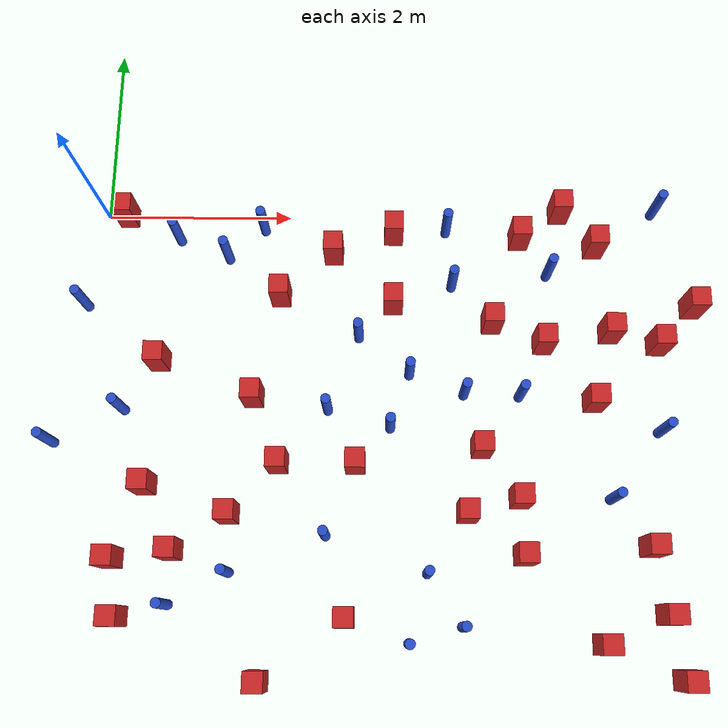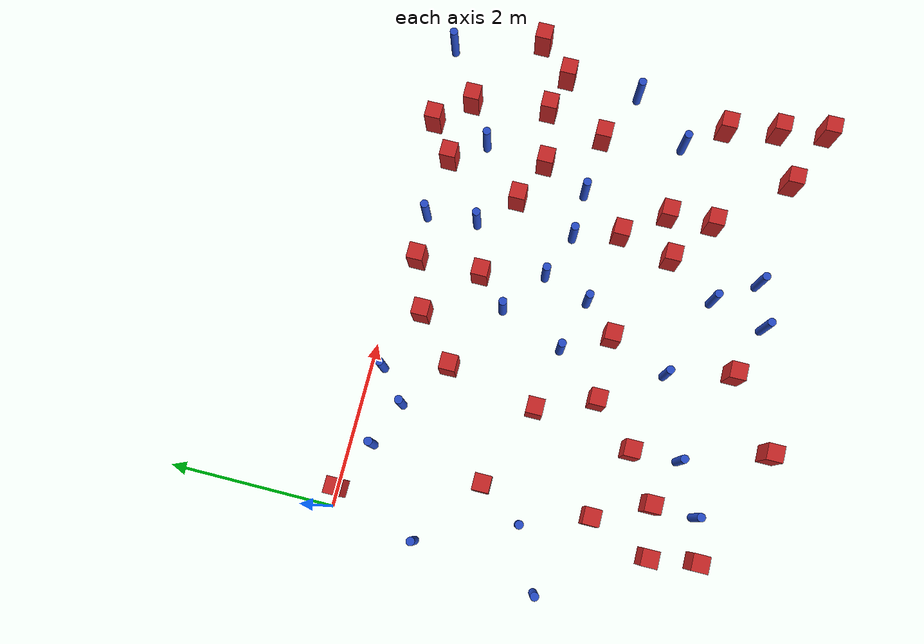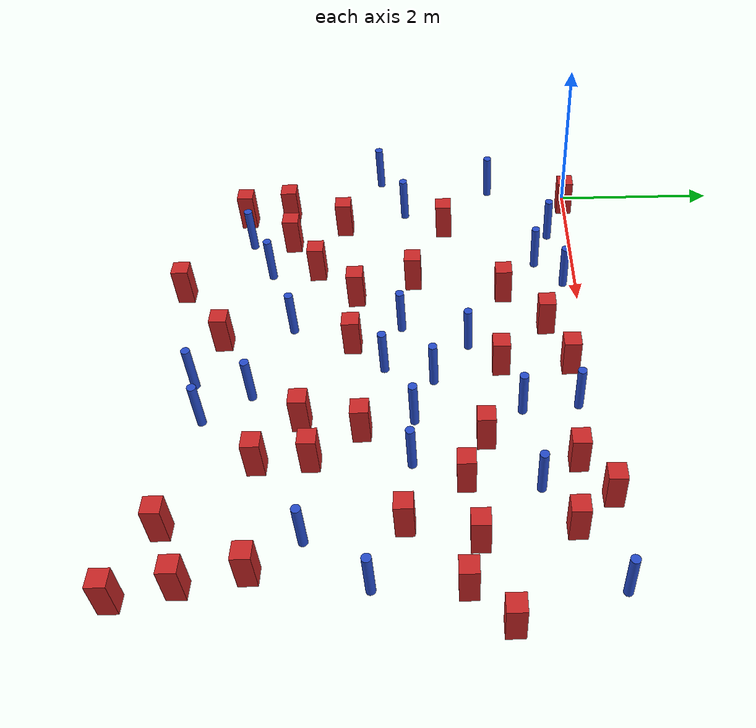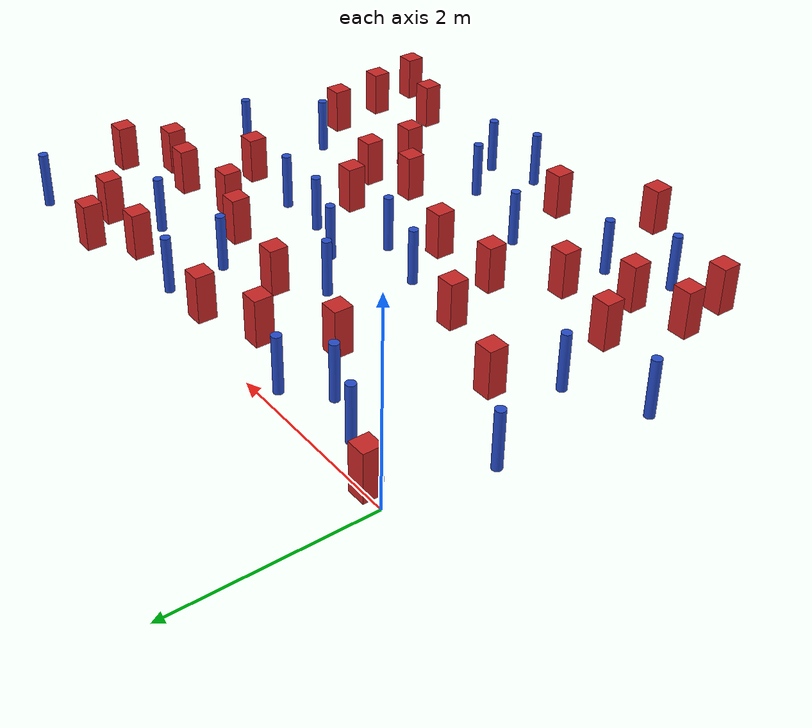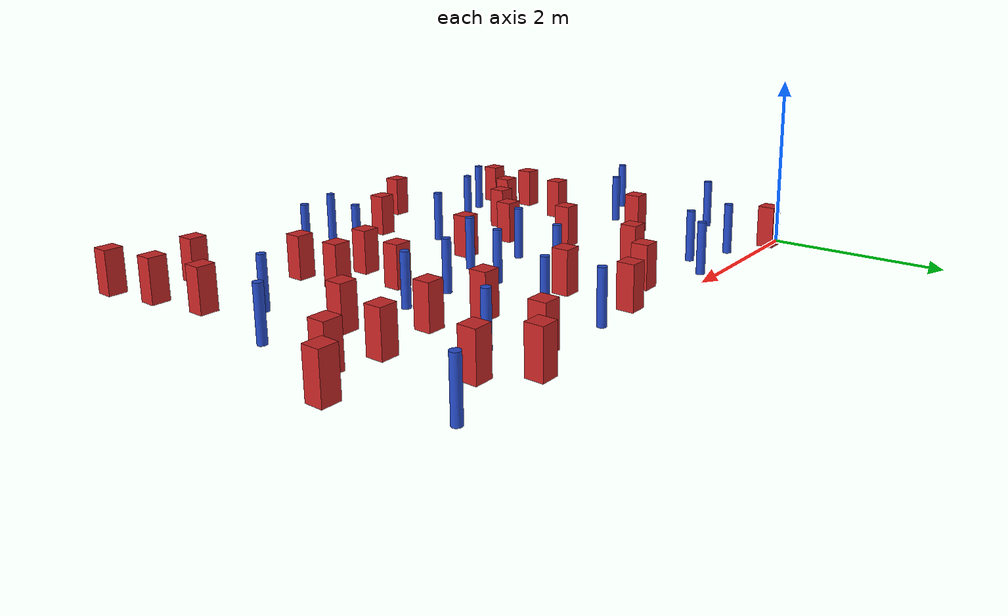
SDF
<sdf version="1.6">
 <model name="dense_26">
  <model name="pole_obstacle2">
   <static>true</static>
   <pose>5.98450393282 0.0520118325981 2.88873142074e-08 -9.90536689361e-09 4.60219949001e-07 -1.20965994955e-07</pose>
   <link name="link">
    <pose>0 0 0.3 0 -0 0</pose>
    <inertial>
     <mass>1</mass>
     <inertia><ixx>0.145833</ixx><ixy>0</ixy><ixz>0</ixz><iyy>0.145833</iyy><iyz>0</iyz><izz>0.125</izz></inertia>
    </inertial>
    <collision name="collision">
     <geometry><cylinder><radius>0.05</radius><length>.6</length></cylinder></geometry>
    </collision>
    <visual name="visual">
     <geometry><cylinder><radius>0.05</radius><length>.6</length></cylinder></geometry>
     <material>
      <script><name>Gazebo/Blue</name><uri>file://media/materials/scripts/gazebo.material</uri></script>
     </material>
    </visual>
   </link>
  </model>
  <model name="square_post_obstacle13">
   <static>true</static>
   <pose>5.93335077788 -1.4574501915 8.22691968438e-08 7.2212513382e-06 -7.54495500217e-07 2.29674213826e-05</pose>
   <link name="link">
    <pose>0 0 0.25 0 -0 0</pose>
    <inertial>
     <mass>100</mass>
     <inertia>
      <ixx>0.166667</ixx>
      <ixy>0</ixy>
      <ixz>0</ixz>
      <iyy>0.166667</iyy>
      <iyz>0</iyz>
      <izz>0.166667</izz>
     </inertia>
    </inertial>
    <collision name="collision"><geometry><box><size>.2 .2 .5</size></box></geometry></collision>
    <visual name="visual">
     <geometry><box><size>.2 .2 .5</size></box></geometry>
     <material>
      <script><name>Gazebo/Red</name><uri>file://media/materials/scripts/gazebo.material</uri></script>
     </material>
    </visual>
   </link>
  </model>
  <model name="square_post_obstacle28">
   <static>true</static>
   <pose>4.45111842854 -3.65477685041 8.22691968438e-08 7.2212513382e-06 -7.54495500217e-07 2.29674213826e-05</pose>
   <link name="link">
    <pose>0 0 0.25 0 -0 0</pose>
    <inertial>
     <mass>100</mass>
     <inertia>
      <ixx>0.166667</ixx>
      <ixy>0</ixy>
      <ixz>0</ixz>
      <iyy>0.166667</iyy>
      <iyz>0</iyz>
      <izz>0.166667</izz>
     </inertia>
    </inertial>
    <collision name="collision"><geometry><box><size>.2 .2 .5</size></box></geometry></collision>
    <visual name="visual">
     <geometry><box><size>.2 .2 .5</size></box></geometry>
     <material>
      <script><name>Gazebo/Red</name><uri>file://media/materials/scripts/gazebo.material</uri></script>
     </material>
    </visual>
   </link>
  </model>
  <model name="square_post_obstacle36">
   <static>true</static>
   <pose>6.32272839753 -1.04574170397 8.22691968438e-08 7.2212513382e-06 -7.54495500217e-07 2.29674213826e-05</pose>
   <link name="link">
    <pose>0 0 0.25 0 -0 0</pose>
    <inertial>
     <mass>100</mass>
     <inertia>
      <ixx>0.166667</ixx>
      <ixy>0</ixy>
      <ixz>0</ixz>
      <iyy>0.166667</iyy>
      <iyz>0</iyz>
      <izz>0.166667</izz>
     </inertia>
    </inertial>
    <collision name="collision"><geometry><box><size>.2 .2 .5</size></box></geometry></collision>
    <visual name="visual">
     <geometry><box><size>.2 .2 .5</size></box></geometry>
     <material>
      <script><name>Gazebo/Red</name><uri>file://media/materials/scripts/gazebo.material</uri></script>
     </material>
    </visual>
   </link>
  </model>
  <model name="pole_obstacle37">
   <static>true</static>
   <pose>1.49256825739 -3.83548454212 2.88873142074e-08 -9.90536689791e-09 4.6021994899e-07 -1.20965994959e-07</pose>
   <link name="link">
    <pose>0 0 0.3 0 -0 0</pose>
    <inertial>
     <mass>1</mass>
     <inertia><ixx>0.145833</ixx><ixy>0</ixy><ixz>0</ixz><iyy>0.145833</iyy><iyz>0</iyz><izz>0.125</izz></inertia>
    </inertial>
    <collision name="collision">
     <geometry><cylinder><radius>0.05</radius><length>.6</length></cylinder></geometry>
    </collision>
    <visual name="visual">
     <geometry><cylinder><radius>0.05</radius><length>.6</length></cylinder></geometry>
     <material>
      <script><name>Gazebo/Blue</name><uri>file://media/materials/scripts/gazebo.material</uri></script>
     </material>
    </visual>
   </link>
  </model>
  <model name="square_post_obstacle39">
   <static>true</static>
   <pose>5.97103102984 -4.82717464047 8.22691968438e-08 7.2212513382e-06 -7.54495500217e-07 2.29674213826e-05</pose>
   <link name="link">
    <pose>0 0 0.25 0 -0 0</pose>
    <inertial>
     <mass>100</mass>
     <inertia>
      <ixx>0.166667</ixx>
      <ixy>0</ixy>
      <ixz>0</ixz>
      <iyy>0.166667</iyy>
      <iyz>0</iyz>
      <izz>0.166667</izz>
     </inertia>
    </inertial>
    <collision name="collision"><geometry><box><size>.2 .2 .5</size></box></geometry></collision>
    <visual name="visual">
     <geometry><box><size>.2 .2 .5</size></box></geometry>
     <material>
      <script><name>Gazebo/Red</name><uri>file://media/materials/scripts/gazebo.material</uri></script>
     </material>
    </visual>
   </link>
  </model>
  <model name="pole_obstacle40">
   <static>true</static>
   <pose>3.48325071317 -3.83719555278 2.88873142074e-08 -9.90536690232e-09 4.6021994898e-07 -1.20965994968e-07</pose>
   <link name="link">
    <pose>0 0 0.3 0 -0 0</pose>
    <inertial>
     <mass>1</mass>
     <inertia><ixx>0.145833</ixx><ixy>0</ixy><ixz>0</ixz><iyy>0.145833</iyy><iyz>0</iyz><izz>0.125</izz></inertia>
    </inertial>
    <collision name="collision">
     <geometry><cylinder><radius>0.05</radius><length>.6</length></cylinder></geometry>
    </collision>
    <visual name="visual">
     <geometry><cylinder><radius>0.05</radius><length>.6</length></cylinder></geometry>
     <material>
      <script><name>Gazebo/Blue</name><uri>file://media/materials/scripts/gazebo.material</uri></script>
     </material>
    </visual>
   </link>
  </model>
  <model name="square_post_obstacle41">
   <static>true</static>
   <pose>2.66151567636 -4.26531768312 8.22691968438e-08 7.2212513382e-06 -7.54495500217e-07 2.29674213826e-05</pose>
   <link name="link">
    <pose>0 0 0.25 0 -0 0</pose>
    <inertial>
     <mass>100</mass>
     <inertia>
      <ixx>0.166667</ixx>
      <ixy>0</ixy>
      <ixz>0</ixz>
      <iyy>0.166667</iyy>
      <iyz>0</iyz>
      <izz>0.166667</izz>
     </inertia>
    </inertial>
    <collision name="collision"><geometry><box><size>.2 .2 .5</size></box></geometry></collision>
    <visual name="visual">
     <geometry><box><size>.2 .2 .5</size></box></geometry>
     <material>
      <script><name>Gazebo/Red</name><uri>file://media/materials/scripts/gazebo.material</uri></script>
     </material>
    </visual>
   </link>
  </model>
  <model name="pole_obstacle44">
   <static>true</static>
   <pose>-0.382834621249 -2.52959124506 2.88873142074e-08 -9.90536689663e-09 4.60219948993e-07 -1.20965994959e-07</pose>
   <link name="link">
    <pose>0 0 0.3 0 -0 0</pose>
    <inertial>
     <mass>1</mass>
     <inertia><ixx>0.145833</ixx><ixy>0</ixy><ixz>0</ixz><iyy>0.145833</iyy><iyz>0</iyz><izz>0.125</izz></inertia>
    </inertial>
    <collision name="collision">
     <geometry><cylinder><radius>0.05</radius><length>.6</length></cylinder></geometry>
    </collision>
    <visual name="visual">
     <geometry><cylinder><radius>0.05</radius><length>.6</length></cylinder></geometry>
     <material>
      <script><name>Gazebo/Blue</name><uri>file://media/materials/scripts/gazebo.material</uri></script>
     </material>
    </visual>
   </link>
  </model>
  <model name="square_post_obstacle53">
   <static>true</static>
   <pose>0.409191091233 -4.26448317062 8.22691968438e-08 7.2212513382e-06 -7.54495500217e-07 2.29674213826e-05</pose>
   <link name="link">
    <pose>0 0 0.25 0 -0 0</pose>
    <inertial>
     <mass>100</mass>
     <inertia>
      <ixx>0.166667</ixx>
      <ixy>0</ixy>
      <ixz>0</ixz>
      <iyy>0.166667</iyy>
      <iyz>0</iyz>
      <izz>0.166667</izz>
     </inertia>
    </inertial>
    <collision name="collision"><geometry><box><size>.2 .2 .5</size></box></geometry></collision>
    <visual name="visual">
     <geometry><box><size>.2 .2 .5</size></box></geometry>
     <material>
      <script><name>Gazebo/Red</name><uri>file://media/materials/scripts/gazebo.material</uri></script>
     </material>
    </visual>
   </link>
  </model>
  <model name="pole_obstacle51">
   <static>true</static>
   <pose>2.77264716484 -1.38363650545 2.88873142074e-08 -9.90536689395e-09 4.60219949e-07 -1.20965994953e-07</pose>
   <link name="link">
    <pose>0 0 0.3 0 -0 0</pose>
    <inertial>
     <mass>1</mass>
     <inertia><ixx>0.145833</ixx><ixy>0</ixy><ixz>0</ixz><iyy>0.145833</iyy><iyz>0</iyz><izz>0.125</izz></inertia>
    </inertial>
    <collision name="collision">
     <geometry><cylinder><radius>0.05</radius><length>.6</length></cylinder></geometry>
    </collision>
    <visual name="visual">
     <geometry><cylinder><radius>0.05</radius><length>.6</length></cylinder></geometry>
     <material>
      <script><name>Gazebo/Blue</name><uri>file://media/materials/scripts/gazebo.material</uri></script>
     </material>
    </visual>
   </link>
  </model>
  <model name="square_post_obstacle54">
   <static>true</static>
   <pose>1.96035430319 -2.73951562965 8.22691968438e-08 7.2212513382e-06 -7.54495500217e-07 2.29674213826e-05</pose>
   <link name="link">
    <pose>0 0 0.25 0 -0 0</pose>
    <inertial>
     <mass>100</mass>
     <inertia>
      <ixx>0.166667</ixx>
      <ixy>0</ixy>
      <ixz>0</ixz>
      <iyy>0.166667</iyy>
      <iyz>0</iyz>
      <izz>0.166667</izz>
     </inertia>
    </inertial>
    <collision name="collision"><geometry><box><size>.2 .2 .5</size></box></geometry></collision>
    <visual name="visual">
     <geometry><box><size>.2 .2 .5</size></box></geometry>
     <material>
      <script><name>Gazebo/Red</name><uri>file://media/materials/scripts/gazebo.material</uri></script>
     </material>
    </visual>
   </link>
  </model>
  <model name="pole_obstacle53">
   <static>true</static>
   <pose>3.29543677055 -4.50667835025 2.88873142074e-08 -9.90536689859e-09 4.60219948989e-07 -1.20965994961e-07</pose>
   <link name="link">
    <pose>0 0 0.3 0 -0 0</pose>
    <inertial>
     <mass>1</mass>
     <inertia><ixx>0.145833</ixx><ixy>0</ixy><ixz>0</ixz><iyy>0.145833</iyy><iyz>0</iyz><izz>0.125</izz></inertia>
    </inertial>
    <collision name="collision">
     <geometry><cylinder><radius>0.05</radius><length>.6</length></cylinder></geometry>
    </collision>
    <visual name="visual">
     <geometry><cylinder><radius>0.05</radius><length>.6</length></cylinder></geometry>
     <material>
      <script><name>Gazebo/Blue</name><uri>file://media/materials/scripts/gazebo.material</uri></script>
     </material>
    </visual>
   </link>
  </model>
  <model name="pole_obstacle54">
   <static>true</static>
   <pose>-0.143651358679 -1.04410342524 2.88873142074e-08 -9.90536690103e-09 4.60219948983e-07 -1.20965994964e-07</pose>
   <link name="link">
    <pose>0 0 0.3 0 -0 0</pose>
    <inertial>
     <mass>1</mass>
     <inertia><ixx>0.145833</ixx><ixy>0</ixy><ixz>0</ixz><iyy>0.145833</iyy><iyz>0</iyz><izz>0.125</izz></inertia>
    </inertial>
    <collision name="collision">
     <geometry><cylinder><radius>0.05</radius><length>.6</length></cylinder></geometry>
    </collision>
    <visual name="visual">
     <geometry><cylinder><radius>0.05</radius><length>.6</length></cylinder></geometry>
     <material>
      <script><name>Gazebo/Blue</name><uri>file://media/materials/scripts/gazebo.material</uri></script>
     </material>
    </visual>
   </link>
  </model>
  <model name="square_post_obstacle67">
   <static>true</static>
   <pose>0.230496301071 -0.016994619887 8.22691968438e-08 7.2212513382e-06 -7.54495500217e-07 2.29674213826e-05</pose>
   <link name="link">
    <pose>0 0 0.25 0 -0 0</pose>
    <inertial>
     <mass>100</mass>
     <inertia>
      <ixx>0.166667</ixx>
      <ixy>0</ixy>
      <ixz>0</ixz>
      <iyy>0.166667</iyy>
      <iyz>0</iyz>
      <izz>0.166667</izz>
     </inertia>
    </inertial>
    <collision name="collision"><geometry><box><size>.2 .2 .5</size></box></geometry></collision>
    <visual name="visual">
     <geometry><box><size>.2 .2 .5</size></box></geometry>
     <material>
      <script><name>Gazebo/Red</name><uri>file://media/materials/scripts/gazebo.material</uri></script>
     </material>
    </visual>
   </link>
  </model>
  <model name="square_post_obstacle70">
   <static>true</static>
   <pose>4.42544886467 -3.08571415982 8.22691968438e-08 7.2212513382e-06 -7.54495500217e-07 2.29674213826e-05</pose>
   <link name="link">
    <pose>0 0 0.25 0 -0 0</pose>
    <inertial>
     <mass>100</mass>
     <inertia>
      <ixx>0.166667</ixx>
      <ixy>0</ixy>
      <ixz>0</ixz>
      <iyy>0.166667</iyy>
      <iyz>0</iyz>
      <izz>0.166667</izz>
     </inertia>
    </inertial>
    <collision name="collision"><geometry><box><size>.2 .2 .5</size></box></geometry></collision>
    <visual name="visual">
     <geometry><box><size>.2 .2 .5</size></box></geometry>
     <material>
      <script><name>Gazebo/Red</name><uri>file://media/materials/scripts/gazebo.material</uri></script>
     </material>
    </visual>
   </link>
  </model>
  <model name="square_post_obstacle73">
   <static>true</static>
   <pose>1.93574603349 -0.931597426124 8.22691968438e-08 7.2212513382e-06 -7.54495500217e-07 2.29674213826e-05</pose>
   <link name="link">
    <pose>0 0 0.25 0 -0 0</pose>
    <inertial>
     <mass>100</mass>
     <inertia>
      <ixx>0.166667</ixx>
      <ixy>0</ixy>
      <ixz>0</ixz>
      <iyy>0.166667</iyy>
      <iyz>0</iyz>
      <izz>0.166667</izz>
     </inertia>
    </inertial>
    <collision name="collision"><geometry><box><size>.2 .2 .5</size></box></geometry></collision>
    <visual name="visual">
     <geometry><box><size>.2 .2 .5</size></box></geometry>
     <material>
      <script><name>Gazebo/Red</name><uri>file://media/materials/scripts/gazebo.material</uri></script>
     </material>
    </visual>
   </link>
  </model>
  <model name="square_post_obstacle75">
   <static>true</static>
   <pose>5.20653766354 -4.50158408308 8.22691968438e-08 7.22125133819e-06 -7.54495500217e-07 2.29674213826e-05</pose>
   <link name="link">
    <pose>0 0 0.25 0 -0 0</pose>
    <inertial>
     <mass>100</mass>
     <inertia>
      <ixx>0.166667</ixx>
      <ixy>0</ixy>
      <ixz>0</ixz>
      <iyy>0.166667</iyy>
      <iyz>0</iyz>
      <izz>0.166667</izz>
     </inertia>
    </inertial>
    <collision name="collision"><geometry><box><size>.2 .2 .5</size></box></geometry></collision>
    <visual name="visual">
     <geometry><box><size>.2 .2 .5</size></box></geometry>
     <material>
      <script><name>Gazebo/Red</name><uri>file://media/materials/scripts/gazebo.material</uri></script>
     </material>
    </visual>
   </link>
  </model>
  <model name="pole_obstacle81">
   <static>true</static>
   <pose>3.87712751434 -2.00368837345 2.88873142074e-08 -9.9053668955e-09 4.60219948996e-07 -1.20965994957e-07</pose>
   <link name="link">
    <pose>0 0 0.3 0 -0 0</pose>
    <inertial>
     <mass>1</mass>
     <inertia><ixx>0.145833</ixx><ixy>0</ixy><ixz>0</ixz><iyy>0.145833</iyy><iyz>0</iyz><izz>0.125</izz></inertia>
    </inertial>
    <collision name="collision">
     <geometry><cylinder><radius>0.05</radius><length>.6</length></cylinder></geometry>
    </collision>
    <visual name="visual">
     <geometry><cylinder><radius>0.05</radius><length>.6</length></cylinder></geometry>
     <material>
      <script><name>Gazebo/Blue</name><uri>file://media/materials/scripts/gazebo.material</uri></script>
     </material>
    </visual>
   </link>
  </model>
  <model name="pole_obstacle84">
   <static>true</static>
   <pose>3.7648357998 -0.805726937626 2.88873142074e-08 -9.90536689285e-09 4.60219949002e-07 -1.20965994953e-07</pose>
   <link name="link">
    <pose>0 0 0.3 0 -0 0</pose>
    <inertial>
     <mass>1</mass>
     <inertia><ixx>0.145833</ixx><ixy>0</ixy><ixz>0</ixz><iyy>0.145833</iyy><iyz>0</iyz><izz>0.125</izz></inertia>
    </inertial>
    <collision name="collision">
     <geometry><cylinder><radius>0.05</radius><length>.6</length></cylinder></geometry>
    </collision>
    <visual name="visual">
     <geometry><cylinder><radius>0.05</radius><length>.6</length></cylinder></geometry>
     <material>
      <script><name>Gazebo/Blue</name><uri>file://media/materials/scripts/gazebo.material</uri></script>
     </material>
    </visual>
   </link>
  </model>
  <model name="pole_obstacle87">
   <static>true</static>
   <pose>3.30753627075 -1.78974262358 2.88873142074e-08 -9.90536689395e-09 4.60219949e-07 -1.20965994953e-07</pose>
   <link name="link">
    <pose>0 0 0.3 0 -0 0</pose>
    <inertial>
     <mass>1</mass>
     <inertia><ixx>0.145833</ixx><ixy>0</ixy><ixz>0</ixz><iyy>0.145833</iyy><iyz>0</iyz><izz>0.125</izz></inertia>
    </inertial>
    <collision name="collision">
     <geometry><cylinder><radius>0.05</radius><length>.6</length></cylinder></geometry>
    </collision>
    <visual name="visual">
     <geometry><cylinder><radius>0.05</radius><length>.6</length></cylinder></geometry>
     <material>
      <script><name>Gazebo/Blue</name><uri>file://media/materials/scripts/gazebo.material</uri></script>
     </material>
    </visual>
   </link>
  </model>
  <model name="square_post_obstacle81">
   <static>true</static>
   <pose>5.84723898401 -4.21907924971 8.22691968438e-08 7.2212513382e-06 -7.54495500217e-07 2.29674213826e-05</pose>
   <link name="link">
    <pose>0 0 0.25 0 -0 0</pose>
    <inertial>
     <mass>100</mass>
     <inertia>
      <ixx>0.166667</ixx>
      <ixy>0</ixy>
      <ixz>0</ixz>
      <iyy>0.166667</iyy>
      <iyz>0</iyz>
      <izz>0.166667</izz>
     </inertia>
    </inertial>
    <collision name="collision"><geometry><box><size>.2 .2 .5</size></box></geometry></collision>
    <visual name="visual">
     <geometry><box><size>.2 .2 .5</size></box></geometry>
     <material>
      <script><name>Gazebo/Red</name><uri>file://media/materials/scripts/gazebo.material</uri></script>
     </material>
    </visual>
   </link>
  </model>
  <model name="square_post_obstacle82">
   <static>true</static>
   <pose>0.323759396183 -3.70126716959 8.22691968438e-08 7.22125133819e-06 -7.54495500217e-07 2.29674213826e-05</pose>
   <link name="link">
    <pose>0 0 0.25 0 -0 0</pose>
    <inertial>
     <mass>100</mass>
     <inertia>
      <ixx>0.166667</ixx>
      <ixy>0</ixy>
      <ixz>0</ixz>
      <iyy>0.166667</iyy>
      <iyz>0</iyz>
      <izz>0.166667</izz>
     </inertia>
    </inertial>
    <collision name="collision"><geometry><box><size>.2 .2 .5</size></box></geometry></collision>
    <visual name="visual">
     <geometry><box><size>.2 .2 .5</size></box></geometry>
     <material>
      <script><name>Gazebo/Red</name><uri>file://media/materials/scripts/gazebo.material</uri></script>
     </material>
    </visual>
   </link>
  </model>
  <model name="pole_obstacle95">
   <static>true</static>
   <pose>1.3546729714 -0.496538932915 2.88873142074e-08 -9.90536689816e-09 4.6021994899e-07 -1.2096599496e-07</pose>
   <link name="link">
    <pose>0 0 0.3 0 -0 0</pose>
    <inertial>
     <mass>1</mass>
     <inertia><ixx>0.145833</ixx><ixy>0</ixy><ixz>0</ixz><iyy>0.145833</iyy><iyz>0</iyz><izz>0.125</izz></inertia>
    </inertial>
    <collision name="collision">
     <geometry><cylinder><radius>0.05</radius><length>.6</length></cylinder></geometry>
    </collision>
    <visual name="visual">
     <geometry><cylinder><radius>0.05</radius><length>.6</length></cylinder></geometry>
     <material>
      <script><name>Gazebo/Blue</name><uri>file://media/materials/scripts/gazebo.material</uri></script>
     </material>
    </visual>
   </link>
  </model>
  <model name="square_post_obstacle93">
   <static>true</static>
   <pose>5.22646437338 -2.0768197818 8.22691968438e-08 7.2212513382e-06 -7.54495500217e-07 2.29674213826e-05</pose>
   <link name="link">
    <pose>0 0 0.25 0 -0 0</pose>
    <inertial>
     <mass>100</mass>
     <inertia>
      <ixx>0.166667</ixx>
      <ixy>0</ixy>
      <ixz>0</ixz>
      <iyy>0.166667</iyy>
      <iyz>0</iyz>
      <izz>0.166667</izz>
     </inertia>
    </inertial>
    <collision name="collision"><geometry><box><size>.2 .2 .5</size></box></geometry></collision>
    <visual name="visual">
     <geometry><box><size>.2 .2 .5</size></box></geometry>
     <material>
      <script><name>Gazebo/Red</name><uri>file://media/materials/scripts/gazebo.material</uri></script>
     </material>
    </visual>
   </link>
  </model>
  <model name="square_post_obstacle94">
   <static>true</static>
   <pose>1.47545033394 -3.25435996841 8.22691968438e-08 7.2212513382e-06 -7.54495500217e-07 2.29674213826e-05</pose>
   <link name="link">
    <pose>0 0 0.25 0 -0 0</pose>
    <inertial>
     <mass>100</mass>
     <inertia>
      <ixx>0.166667</ixx>
      <ixy>0</ixy>
      <ixz>0</ixz>
      <iyy>0.166667</iyy>
      <iyz>0</iyz>
      <izz>0.166667</izz>
     </inertia>
    </inertial>
    <collision name="collision"><geometry><box><size>.2 .2 .5</size></box></geometry></collision>
    <visual name="visual">
     <geometry><box><size>.2 .2 .5</size></box></geometry>
     <material>
      <script><name>Gazebo/Red</name><uri>file://media/materials/scripts/gazebo.material</uri></script>
     </material>
    </visual>
   </link>
  </model>
  <model name="square_post_obstacle107">
   <static>true</static>
   <pose>2.49431389134 -0.445894616972 8.22691968438e-08 7.2212513382e-06 -7.54495500217e-07 2.29674213826e-05</pose>
   <link name="link">
    <pose>0 0 0.25 0 -0 0</pose>
    <inertial>
     <mass>100</mass>
     <inertia>
      <ixx>0.166667</ixx>
      <ixy>0</ixy>
      <ixz>0</ixz>
      <iyy>0.166667</iyy>
      <iyz>0</iyz>
      <izz>0.166667</izz>
     </inertia>
    </inertial>
    <collision name="collision"><geometry><box><size>.2 .2 .5</size></box></geometry></collision>
    <visual name="visual">
     <geometry><box><size>.2 .2 .5</size></box></geometry>
     <material>
      <script><name>Gazebo/Red</name><uri>file://media/materials/scripts/gazebo.material</uri></script>
     </material>
    </visual>
   </link>
  </model>
  <model name="square_post_obstacle117">
   <static>true</static>
   <pose>0.613677046127 -2.96693166653 8.22691968438e-08 7.2212513382e-06 -7.54495500217e-07 2.29674213826e-05</pose>
   <link name="link">
    <pose>0 0 0.25 0 -0 0</pose>
    <inertial>
     <mass>100</mass>
     <inertia>
      <ixx>0.166667</ixx>
      <ixy>0</ixy>
      <ixz>0</ixz>
      <iyy>0.166667</iyy>
      <iyz>0</iyz>
      <izz>0.166667</izz>
     </inertia>
    </inertial>
    <collision name="collision"><geometry><box><size>.2 .2 .5</size></box></geometry></collision>
    <visual name="visual">
     <geometry><box><size>.2 .2 .5</size></box></geometry>
     <material>
      <script><name>Gazebo/Red</name><uri>file://media/materials/scripts/gazebo.material</uri></script>
     </material>
    </visual>
   </link>
  </model>
  <model name="pole_obstacle136">
   <static>true</static>
   <pose>4.45875215781 -2.02023950317 2.88873142074e-08 -9.90536689749e-09 4.60219948991e-07 -1.20965994959e-07</pose>
   <link name="link">
    <pose>0 0 0.3 0 -0 0</pose>
    <inertial>
     <mass>1</mass>
     <inertia><ixx>0.145833</ixx><ixy>0</ixy><ixz>0</ixz><iyy>0.145833</iyy><iyz>0</iyz><izz>0.125</izz></inertia>
    </inertial>
    <collision name="collision">
     <geometry><cylinder><radius>0.05</radius><length>.6</length></cylinder></geometry>
    </collision>
    <visual name="visual">
     <geometry><cylinder><radius>0.05</radius><length>.6</length></cylinder></geometry>
     <material>
      <script><name>Gazebo/Blue</name><uri>file://media/materials/scripts/gazebo.material</uri></script>
     </material>
    </visual>
   </link>
  </model>
  <model name="square_post_obstacle118">
   <static>true</static>
   <pose>4.72104698933 -1.45118410334 8.22691968438e-08 7.2212513382e-06 -7.54495500217e-07 2.29674213826e-05</pose>
   <link name="link">
    <pose>0 0 0.25 0 -0 0</pose>
    <inertial>
     <mass>100</mass>
     <inertia>
      <ixx>0.166667</ixx>
      <ixy>0</ixy>
      <ixz>0</ixz>
      <iyy>0.166667</iyy>
      <iyz>0</iyz>
      <izz>0.166667</izz>
     </inertia>
    </inertial>
    <collision name="collision"><geometry><box><size>.2 .2 .5</size></box></geometry></collision>
    <visual name="visual">
     <geometry><box><size>.2 .2 .5</size></box></geometry>
     <material>
      <script><name>Gazebo/Red</name><uri>file://media/materials/scripts/gazebo.material</uri></script>
     </material>
    </visual>
   </link>
  </model>
  <model name="square_post_obstacle121">
   <static>true</static>
   <pose>5.30965069357 -0.360755727647 8.22691968438e-08 7.2212513382e-06 -7.54495500217e-07 2.29674213826e-05</pose>
   <link name="link">
    <pose>0 0 0.25 0 -0 0</pose>
    <inertial>
     <mass>100</mass>
     <inertia>
      <ixx>0.166667</ixx>
      <ixy>0</ixy>
      <ixz>0</ixz>
      <iyy>0.166667</iyy>
      <iyz>0</iyz>
      <izz>0.166667</izz>
     </inertia>
    </inertial>
    <collision name="collision"><geometry><box><size>.2 .2 .5</size></box></geometry></collision>
    <visual name="visual">
     <geometry><box><size>.2 .2 .5</size></box></geometry>
     <material>
      <script><name>Gazebo/Red</name><uri>file://media/materials/scripts/gazebo.material</uri></script>
     </material>
    </visual>
   </link>
  </model>
  <model name="pole_obstacle147">
   <static>true</static>
   <pose>0.811668101888 -0.284532248913 2.88873142074e-08 -9.90536689796e-09 4.6021994899e-07 -1.20965994959e-07</pose>
   <link name="link">
    <pose>0 0 0.3 0 -0 0</pose>
    <inertial>
     <mass>1</mass>
     <inertia><ixx>0.145833</ixx><ixy>0</ixy><ixz>0</ixz><iyy>0.145833</iyy><iyz>0</iyz><izz>0.125</izz></inertia>
    </inertial>
    <collision name="collision">
     <geometry><cylinder><radius>0.05</radius><length>.6</length></cylinder></geometry>
    </collision>
    <visual name="visual">
     <geometry><cylinder><radius>0.05</radius><length>.6</length></cylinder></geometry>
     <material>
      <script><name>Gazebo/Blue</name><uri>file://media/materials/scripts/gazebo.material</uri></script>
     </material>
    </visual>
   </link>
  </model>
  <model name="square_post_obstacle139">
   <static>true</static>
   <pose>3.13931482529 -0.213341640532 8.22691968438e-08 7.2212513382e-06 -7.54495500217e-07 2.29674213826e-05</pose>
   <link name="link">
    <pose>0 0 0.25 0 -0 0</pose>
    <inertial>
     <mass>100</mass>
     <inertia>
      <ixx>0.166667</ixx>
      <ixy>0</ixy>
      <ixz>0</ixz>
      <iyy>0.166667</iyy>
      <iyz>0</iyz>
      <izz>0.166667</izz>
     </inertia>
    </inertial>
    <collision name="collision"><geometry><box><size>.2 .2 .5</size></box></geometry></collision>
    <visual name="visual">
     <geometry><box><size>.2 .2 .5</size></box></geometry>
     <material>
      <script><name>Gazebo/Red</name><uri>file://media/materials/scripts/gazebo.material</uri></script>
     </material>
    </visual>
   </link>
  </model>
  <model name="pole_obstacle153">
   <static>true</static>
   <pose>2.45686270956 -3.46935712205 2.88873142074e-08 -9.90536690232e-09 4.6021994898e-07 -1.20965994968e-07</pose>
   <link name="link">
    <pose>0 0 0.3 0 -0 0</pose>
    <inertial>
     <mass>1</mass>
     <inertia><ixx>0.145833</ixx><ixy>0</ixy><ixz>0</ixz><iyy>0.145833</iyy><iyz>0</iyz><izz>0.125</izz></inertia>
    </inertial>
    <collision name="collision">
     <geometry><cylinder><radius>0.05</radius><length>.6</length></cylinder></geometry>
    </collision>
    <visual name="visual">
     <geometry><cylinder><radius>0.05</radius><length>.6</length></cylinder></geometry>
     <material>
      <script><name>Gazebo/Blue</name><uri>file://media/materials/scripts/gazebo.material</uri></script>
     </material>
    </visual>
   </link>
  </model>
  <model name="pole_obstacle154">
   <static>true</static>
   <pose>2.45753040304 -2.17624361003 2.88873142074e-08 -9.90536690232e-09 4.6021994898e-07 -1.20965994968e-07</pose>
   <link name="link">
    <pose>0 0 0.3 0 -0 0</pose>
    <inertial>
     <mass>1</mass>
     <inertia><ixx>0.145833</ixx><ixy>0</ixy><ixz>0</ixz><iyy>0.145833</iyy><iyz>0</iyz><izz>0.125</izz></inertia>
    </inertial>
    <collision name="collision">
     <geometry><cylinder><radius>0.05</radius><length>.6</length></cylinder></geometry>
    </collision>
    <visual name="visual">
     <geometry><cylinder><radius>0.05</radius><length>.6</length></cylinder></geometry>
     <material>
      <script><name>Gazebo/Blue</name><uri>file://media/materials/scripts/gazebo.material</uri></script>
     </material>
    </visual>
   </link>
  </model>
  <model name="pole_obstacle155">
   <static>true</static>
   <pose>1.73093458651 -0.160537295768 2.88873142074e-08 -9.90536689982e-09 4.60219948986e-07 -1.20965994963e-07</pose>
   <link name="link">
    <pose>0 0 0.3 0 -0 0</pose>
    <inertial>
     <mass>1</mass>
     <inertia><ixx>0.145833</ixx><ixy>0</ixy><ixz>0</ixz><iyy>0.145833</iyy><iyz>0</iyz><izz>0.125</izz></inertia>
    </inertial>
    <collision name="collision">
     <geometry><cylinder><radius>0.05</radius><length>.6</length></cylinder></geometry>
    </collision>
    <visual name="visual">
     <geometry><cylinder><radius>0.05</radius><length>.6</length></cylinder></geometry>
     <material>
      <script><name>Gazebo/Blue</name><uri>file://media/materials/scripts/gazebo.material</uri></script>
     </material>
    </visual>
   </link>
  </model>
  <model name="square_post_obstacle151">
   <static>true</static>
   <pose>5.72315373338 -3.56571907378 8.22691968438e-08 7.2212513382e-06 -7.54495500217e-07 2.29674213826e-05</pose>
   <link name="link">
    <pose>0 0 0.25 0 -0 0</pose>
    <inertial>
     <mass>100</mass>
     <inertia>
      <ixx>0.166667</ixx>
      <ixy>0</ixy>
      <ixz>0</ixz>
      <iyy>0.166667</iyy>
      <iyz>0</iyz>
      <izz>0.166667</izz>
     </inertia>
    </inertial>
    <collision name="collision"><geometry><box><size>.2 .2 .5</size></box></geometry></collision>
    <visual name="visual">
     <geometry><box><size>.2 .2 .5</size></box></geometry>
     <material>
      <script><name>Gazebo/Red</name><uri>file://media/materials/scripts/gazebo.material</uri></script>
     </material>
    </visual>
   </link>
  </model>
  <model name="pole_obstacle158">
   <static>true</static>
   <pose>5.35896014841 -3.08734214758 2.88873142074e-08 -9.90536690245e-09 4.6021994898e-07 -1.20965994966e-07</pose>
   <link name="link">
    <pose>0 0 0.3 0 -0 0</pose>
    <inertial>
     <mass>1</mass>
     <inertia><ixx>0.145833</ixx><ixy>0</ixy><ixz>0</ixz><iyy>0.145833</iyy><iyz>0</iyz><izz>0.125</izz></inertia>
    </inertial>
    <collision name="collision">
     <geometry><cylinder><radius>0.05</radius><length>.6</length></cylinder></geometry>
    </collision>
    <visual name="visual">
     <geometry><cylinder><radius>0.05</radius><length>.6</length></cylinder></geometry>
     <material>
      <script><name>Gazebo/Blue</name><uri>file://media/materials/scripts/gazebo.material</uri></script>
     </material>
    </visual>
   </link>
  </model>
  <model name="pole_obstacle160">
   <static>true</static>
   <pose>4.79660543313 -0.674754007259 2.88873142074e-08 -9.90536689837e-09 4.60219948989e-07 -1.2096599496e-07</pose>
   <link name="link">
    <pose>0 0 0.3 0 -0 0</pose>
    <inertial>
     <mass>1</mass>
     <inertia><ixx>0.145833</ixx><ixy>0</ixy><ixz>0</ixz><iyy>0.145833</iyy><iyz>0</iyz><izz>0.125</izz></inertia>
    </inertial>
    <collision name="collision">
     <geometry><cylinder><radius>0.05</radius><length>.6</length></cylinder></geometry>
    </collision>
    <visual name="visual">
     <geometry><cylinder><radius>0.05</radius><length>.6</length></cylinder></geometry>
     <material>
      <script><name>Gazebo/Blue</name><uri>file://media/materials/scripts/gazebo.material</uri></script>
     </material>
    </visual>
   </link>
  </model>
  <model name="pole_obstacle161">
   <static>true</static>
   <pose>3.82667661937 -4.34544838673 2.88873142074e-08 -9.90536689859e-09 4.60219948989e-07 -1.20965994961e-07</pose>
   <link name="link">
    <pose>0 0 0.3 0 -0 0</pose>
    <inertial>
     <mass>1</mass>
     <inertia><ixx>0.145833</ixx><ixy>0</ixy><ixz>0</ixz><iyy>0.145833</iyy><iyz>0</iyz><izz>0.125</izz></inertia>
    </inertial>
    <collision name="collision">
     <geometry><cylinder><radius>0.05</radius><length>.6</length></cylinder></geometry>
    </collision>
    <visual name="visual">
     <geometry><cylinder><radius>0.05</radius><length>.6</length></cylinder></geometry>
     <material>
      <script><name>Gazebo/Blue</name><uri>file://media/materials/scripts/gazebo.material</uri></script>
     </material>
    </visual>
   </link>
  </model>
  <model name="square_post_obstacle157">
   <static>true</static>
   <pose>4.180378951 -1.22726663137 8.22691968438e-08 7.2212513382e-06 -7.54495500217e-07 2.29674213826e-05</pose>
   <link name="link">
    <pose>0 0 0.25 0 -0 0</pose>
    <inertial>
     <mass>100</mass>
     <inertia>
      <ixx>0.166667</ixx>
      <ixy>0</ixy>
      <ixz>0</ixz>
      <iyy>0.166667</iyy>
      <iyz>0</iyz>
      <izz>0.166667</izz>
     </inertia>
    </inertial>
    <collision name="collision"><geometry><box><size>.2 .2 .5</size></box></geometry></collision>
    <visual name="visual">
     <geometry><box><size>.2 .2 .5</size></box></geometry>
     <material>
      <script><name>Gazebo/Red</name><uri>file://media/materials/scripts/gazebo.material</uri></script>
     </material>
    </visual>
   </link>
  </model>
  <model name="square_post_obstacle160">
   <static>true</static>
   <pose>1.68228364559 -2.04552805866 8.22691968438e-08 7.2212513382e-06 -7.54495500217e-07 2.29674213826e-05</pose>
   <link name="link">
    <pose>0 0 0.25 0 -0 0</pose>
    <inertial>
     <mass>100</mass>
     <inertia>
      <ixx>0.166667</ixx>
      <ixy>0</ixy>
      <ixz>0</ixz>
      <iyy>0.166667</iyy>
      <iyz>0</iyz>
      <izz>0.166667</izz>
     </inertia>
    </inertial>
    <collision name="collision"><geometry><box><size>.2 .2 .5</size></box></geometry></collision>
    <visual name="visual">
     <geometry><box><size>.2 .2 .5</size></box></geometry>
     <material>
      <script><name>Gazebo/Red</name><uri>file://media/materials/scripts/gazebo.material</uri></script>
     </material>
    </visual>
   </link>
  </model>
  <model name="square_post_obstacle167">
   <static>true</static>
   <pose>4.50058924636 -0.265029514578 8.22691968438e-08 7.2212513382e-06 -7.54495500217e-07 2.29674213826e-05</pose>
   <link name="link">
    <pose>0 0 0.25 0 -0 0</pose>
    <inertial>
     <mass>100</mass>
     <inertia>
      <ixx>0.166667</ixx>
      <ixy>0</ixy>
      <ixz>0</ixz>
      <iyy>0.166667</iyy>
      <iyz>0</iyz>
      <izz>0.166667</izz>
     </inertia>
    </inertial>
    <collision name="collision"><geometry><box><size>.2 .2 .5</size></box></geometry></collision>
    <visual name="visual">
     <geometry><box><size>.2 .2 .5</size></box></geometry>
     <material>
      <script><name>Gazebo/Red</name><uri>file://media/materials/scripts/gazebo.material</uri></script>
     </material>
    </visual>
   </link>
  </model>
  <model name="square_post_obstacle169">
   <static>true</static>
   <pose>4.94645089973 0.0442411745819 8.22691968438e-08 7.2212513382e-06 -7.54495500217e-07 2.29674213826e-05</pose>
   <link name="link">
    <pose>0 0 0.25 0 -0 0</pose>
    <inertial>
     <mass>100</mass>
     <inertia>
      <ixx>0.166667</ixx>
      <ixy>0</ixy>
      <ixz>0</ixz>
      <iyy>0.166667</iyy>
      <iyz>0</iyz>
      <izz>0.166667</izz>
     </inertia>
    </inertial>
    <collision name="collision"><geometry><box><size>.2 .2 .5</size></box></geometry></collision>
    <visual name="visual">
     <geometry><box><size>.2 .2 .5</size></box></geometry>
     <material>
      <script><name>Gazebo/Red</name><uri>file://media/materials/scripts/gazebo.material</uri></script>
     </material>
    </visual>
   </link>
  </model>
  <model name="pole_obstacle184">
   <static>true</static>
   <pose>5.89891716558 -2.39326765611 2.88873142074e-08 -9.90536690245e-09 4.6021994898e-07 -1.20965994966e-07</pose>
   <link name="link">
    <pose>0 0 0.3 0 -0 0</pose>
    <inertial>
     <mass>1</mass>
     <inertia><ixx>0.145833</ixx><ixy>0</ixy><ixz>0</ixz><iyy>0.145833</iyy><iyz>0</iyz><izz>0.125</izz></inertia>
    </inertial>
    <collision name="collision">
     <geometry><cylinder><radius>0.05</radius><length>.6</length></cylinder></geometry>
    </collision>
    <visual name="visual">
     <geometry><cylinder><radius>0.05</radius><length>.6</length></cylinder></geometry>
     <material>
      <script><name>Gazebo/Blue</name><uri>file://media/materials/scripts/gazebo.material</uri></script>
     </material>
    </visual>
   </link>
  </model>
  <model name="pole_obstacle186">
   <static>true</static>
   <pose>3.10794724278 -2.3611027191 2.88873142074e-08 -9.90536690232e-09 4.6021994898e-07 -1.20965994968e-07</pose>
   <link name="link">
    <pose>0 0 0.3 0 -0 0</pose>
    <inertial>
     <mass>1</mass>
     <inertia><ixx>0.145833</ixx><ixy>0</ixy><ixz>0</ixz><iyy>0.145833</iyy><iyz>0</iyz><izz>0.125</izz></inertia>
    </inertial>
    <collision name="collision">
     <geometry><cylinder><radius>0.05</radius><length>.6</length></cylinder></geometry>
    </collision>
    <visual name="visual">
     <geometry><cylinder><radius>0.05</radius><length>.6</length></cylinder></geometry>
     <material>
      <script><name>Gazebo/Blue</name><uri>file://media/materials/scripts/gazebo.material</uri></script>
     </material>
    </visual>
   </link>
  </model>
  <model name="square_post_obstacle180">
   <static>true</static>
   <pose>0.921096558683 -3.61901471808 8.22691968438e-08 7.2212513382e-06 -7.54495500217e-07 2.29674213826e-05</pose>
   <link name="link">
    <pose>0 0 0.25 0 -0 0</pose>
    <inertial>
     <mass>100</mass>
     <inertia>
      <ixx>0.166667</ixx>
      <ixy>0</ixy>
      <ixz>0</ixz>
      <iyy>0.166667</iyy>
      <iyz>0</iyz>
      <izz>0.166667</izz>
     </inertia>
    </inertial>
    <collision name="collision"><geometry><box><size>.2 .2 .5</size></box></geometry></collision>
    <visual name="visual">
     <geometry><box><size>.2 .2 .5</size></box></geometry>
     <material>
      <script><name>Gazebo/Red</name><uri>file://media/materials/scripts/gazebo.material</uri></script>
     </material>
    </visual>
   </link>
  </model>
  <model name="square_post_obstacle184">
   <static>true</static>
   <pose>2.75269533262 -2.74299284364 8.22691968438e-08 7.2212513382e-06 -7.54495500217e-07 2.29674213826e-05</pose>
   <link name="link">
    <pose>0 0 0.25 0 -0 0</pose>
    <inertial>
     <mass>100</mass>
     <inertia>
      <ixx>0.166667</ixx>
      <ixy>0</ixy>
      <ixz>0</ixz>
      <iyy>0.166667</iyy>
      <iyz>0</iyz>
      <izz>0.166667</izz>
     </inertia>
    </inertial>
    <collision name="collision"><geometry><box><size>.2 .2 .5</size></box></geometry></collision>
    <visual name="visual">
     <geometry><box><size>.2 .2 .5</size></box></geometry>
     <material>
      <script><name>Gazebo/Red</name><uri>file://media/materials/scripts/gazebo.material</uri></script>
     </material>
    </visual>
   </link>
  </model>
  <model name="square_post_obstacle185">
   <static>true</static>
   <pose>0.677217273289 -1.65722234468 8.22691968438e-08 7.2212513382e-06 -7.54495500217e-07 2.29674213826e-05</pose>
   <link name="link">
    <pose>0 0 0.25 0 -0 0</pose>
    <inertial>
     <mass>100</mass>
     <inertia>
      <ixx>0.166667</ixx>
      <ixy>0</ixy>
      <ixz>0</ixz>
      <iyy>0.166667</iyy>
      <iyz>0</iyz>
      <izz>0.166667</izz>
     </inertia>
    </inertial>
    <collision name="collision"><geometry><box><size>.2 .2 .5</size></box></geometry></collision>
    <visual name="visual">
     <geometry><box><size>.2 .2 .5</size></box></geometry>
     <material>
      <script><name>Gazebo/Red</name><uri>file://media/materials/scripts/gazebo.material</uri></script>
     </material>
    </visual>
   </link>
  </model>
  <model name="square_post_obstacle191">
   <static>true</static>
   <pose>4.04376388383 -2.56874577481 8.22691968438e-08 7.2212513382e-06 -7.54495500217e-07 2.29674213826e-05</pose>
   <link name="link">
    <pose>0 0 0.25 0 -0 0</pose>
    <inertial>
     <mass>100</mass>
     <inertia>
      <ixx>0.166667</ixx>
      <ixy>0</ixy>
      <ixz>0</ixz>
      <iyy>0.166667</iyy>
      <iyz>0</iyz>
      <izz>0.166667</izz>
     </inertia>
    </inertial>
    <collision name="collision"><geometry><box><size>.2 .2 .5</size></box></geometry></collision>
    <visual name="visual">
     <geometry><box><size>.2 .2 .5</size></box></geometry>
     <material>
      <script><name>Gazebo/Red</name><uri>file://media/materials/scripts/gazebo.material</uri></script>
     </material>
    </visual>
   </link>
  </model>
  <model name="square_post_obstacle193">
   <static>true</static>
   <pose>1.82709982478 -4.85593515961 8.22691968438e-08 7.2212513382e-06 -7.54495500217e-07 2.29674213826e-05</pose>
   <link name="link">
    <pose>0 0 0.25 0 -0 0</pose>
    <inertial>
     <mass>100</mass>
     <inertia>
      <ixx>0.166667</ixx>
      <ixy>0</ixy>
      <ixz>0</ixz>
      <iyy>0.166667</iyy>
      <iyz>0</iyz>
      <izz>0.166667</izz>
     </inertia>
    </inertial>
    <collision name="collision"><geometry><box><size>.2 .2 .5</size></box></geometry></collision>
    <visual name="visual">
     <geometry><box><size>.2 .2 .5</size></box></geometry>
     <material>
      <script><name>Gazebo/Red</name><uri>file://media/materials/scripts/gazebo.material</uri></script>
     </material>
    </visual>
   </link>
  </model>
  <model name="square_post_obstacle196">
   <static>true</static>
   <pose>3.1346643476 -1.01670420171 8.22691968438e-08 7.2212513382e-06 -7.54495500217e-07 2.29674213826e-05</pose>
   <link name="link">
    <pose>0 0 0.25 0 -0 0</pose>
    <inertial>
     <mass>100</mass>
     <inertia>
      <ixx>0.166667</ixx>
      <ixy>0</ixy>
      <ixz>0</ixz>
      <iyy>0.166667</iyy>
      <iyz>0</iyz>
      <izz>0.166667</izz>
     </inertia>
    </inertial>
    <collision name="collision"><geometry><box><size>.2 .2 .5</size></box></geometry></collision>
    <visual name="visual">
     <geometry><box><size>.2 .2 .5</size></box></geometry>
     <material>
      <script><name>Gazebo/Red</name><uri>file://media/materials/scripts/gazebo.material</uri></script>
     </material>
    </visual>
   </link>
  </model>
  <model name="square_post_obstacle213">
   <static>true</static>
   <pose>5.43054541015 -1.33032287641 8.22691968438e-08 7.2212513382e-06 -7.54495500217e-07 2.29674213826e-05</pose>
   <link name="link">
    <pose>0 0 0.25 0 -0 0</pose>
    <inertial>
     <mass>100</mass>
     <inertia>
      <ixx>0.166667</ixx>
      <ixy>0</ixy>
      <ixz>0</ixz>
      <iyy>0.166667</iyy>
      <iyz>0</iyz>
      <izz>0.166667</izz>
     </inertia>
    </inertial>
    <collision name="collision"><geometry><box><size>.2 .2 .5</size></box></geometry></collision>
    <visual name="visual">
     <geometry><box><size>.2 .2 .5</size></box></geometry>
     <material>
      <script><name>Gazebo/Red</name><uri>file://media/materials/scripts/gazebo.material</uri></script>
     </material>
    </visual>
   </link>
  </model>
  <model name="square_post_obstacle216">
   <static>true</static>
   <pose>3.88572624559 -3.23615914567 8.22691968438e-08 7.2212513382e-06 -7.54495500217e-07 2.29674213826e-05</pose>
   <link name="link">
    <pose>0 0 0.25 0 -0 0</pose>
    <inertial>
     <mass>100</mass>
     <inertia>
      <ixx>0.166667</ixx>
      <ixy>0</ixy>
      <ixz>0</ixz>
      <iyy>0.166667</iyy>
      <iyz>0</iyz>
      <izz>0.166667</izz>
     </inertia>
    </inertial>
    <collision name="collision"><geometry><box><size>.2 .2 .5</size></box></geometry></collision>
    <visual name="visual">
     <geometry><box><size>.2 .2 .5</size></box></geometry>
     <material>
      <script><name>Gazebo/Red</name><uri>file://media/materials/scripts/gazebo.material</uri></script>
     </material>
    </visual>
   </link>
  </model>
  <model name="pole_obstacle202">
   <static>true</static>
   <pose>0.327133009133 -2.18205997959 2.88873142074e-08 -9.90536689663e-09 4.60219948993e-07 -1.20965994959e-07</pose>
   <link name="link">
    <pose>0 0 0.3 0 -0 0</pose>
    <inertial>
     <mass>1</mass>
     <inertia><ixx>0.145833</ixx><ixy>0</ixy><ixz>0</ixz><iyy>0.145833</iyy><iyz>0</iyz><izz>0.125</izz></inertia>
    </inertial>
    <collision name="collision">
     <geometry><cylinder><radius>0.05</radius><length>.6</length></cylinder></geometry>
    </collision>
    <visual name="visual">
     <geometry><cylinder><radius>0.05</radius><length>.6</length></cylinder></geometry>
     <material>
      <script><name>Gazebo/Blue</name><uri>file://media/materials/scripts/gazebo.material</uri></script>
     </material>
    </visual>
   </link>
  </model>
  <model name="pole_obstacle204">
   <static>true</static>
   <pose>0.901740009133 -4.14849997959 2.88873142074e-08 -9.90536689661e-09 4.60219948993e-07 -1.20965994957e-07</pose>
   <link name="link">
    <pose>0 0 0.3 0 -0 0</pose>
    <inertial>
     <mass>1</mass>
     <inertia><ixx>0.145833</ixx><ixy>0</ixy><ixz>0</ixz><iyy>0.145833</iyy><iyz>0</iyz><izz>0.125</izz></inertia>
    </inertial>
    <collision name="collision">
     <geometry><cylinder><radius>0.05</radius><length>.6</length></cylinder></geometry>
    </collision>
    <visual name="visual">
     <geometry><cylinder><radius>0.05</radius><length>.6</length></cylinder></geometry>
     <material>
      <script><name>Gazebo/Blue</name><uri>file://media/materials/scripts/gazebo.material</uri></script>
     </material>
    </visual>
   </link>
  </model>
  <model name="pole_obstacle214">
   <static>true</static>
   <pose>3.70914000913 -0.173272979588 2.88873142074e-08 -9.90536690979e-09 4.60219948962e-07 -1.2096599498e-07</pose>
   <link name="link">
    <pose>0 0 0.3 0 -0 0</pose>
    <inertial>
     <mass>1</mass>
     <inertia><ixx>0.145833</ixx><ixy>0</ixy><ixz>0</ixz><iyy>0.145833</iyy><iyz>0</iyz><izz>0.125</izz></inertia>
    </inertial>
    <collision name="collision">
     <geometry><cylinder><radius>0.05</radius><length>.6</length></cylinder></geometry>
    </collision>
    <visual name="visual">
     <geometry><cylinder><radius>0.05</radius><length>.6</length></cylinder></geometry>
     <material>
      <script><name>Gazebo/Blue</name><uri>file://media/materials/scripts/gazebo.material</uri></script>
     </material>
    </visual>
   </link>
  </model>
 </model>
</sdf>
